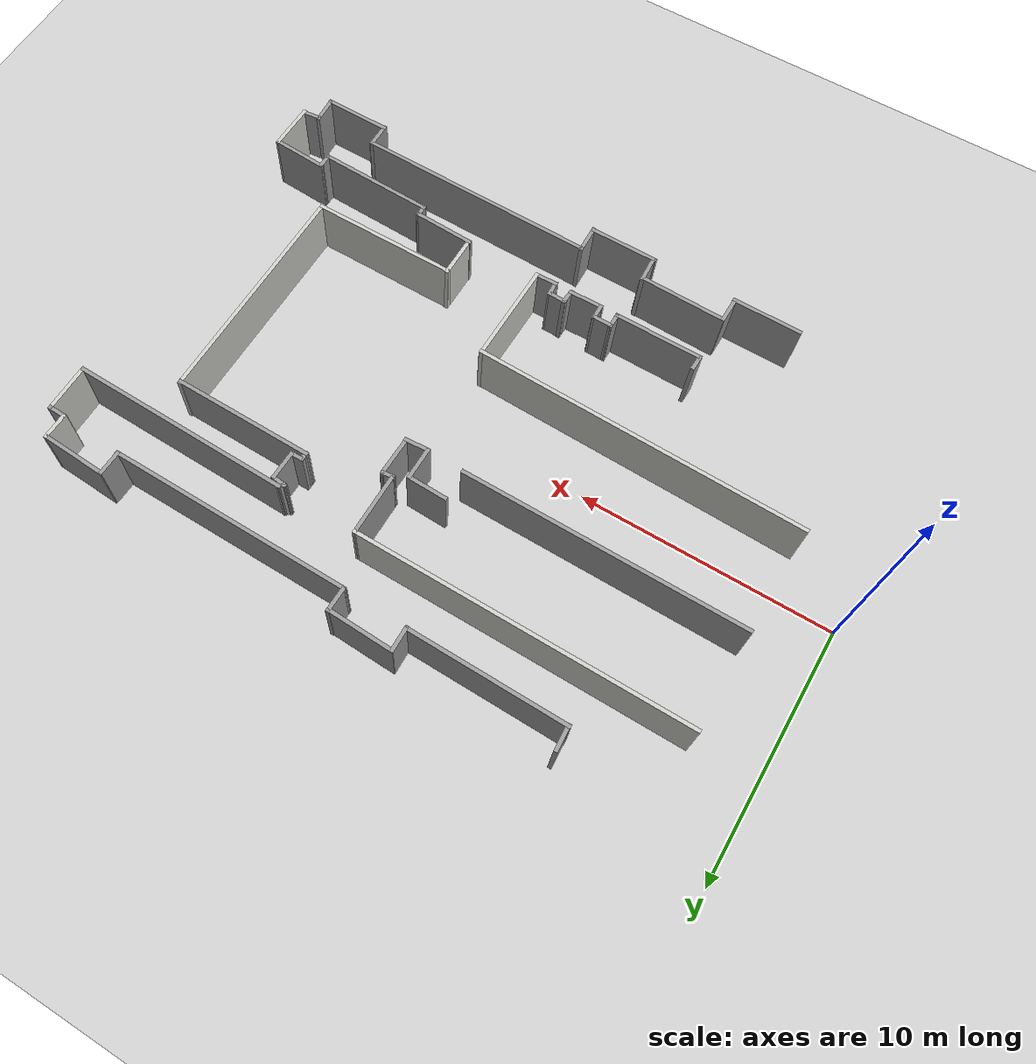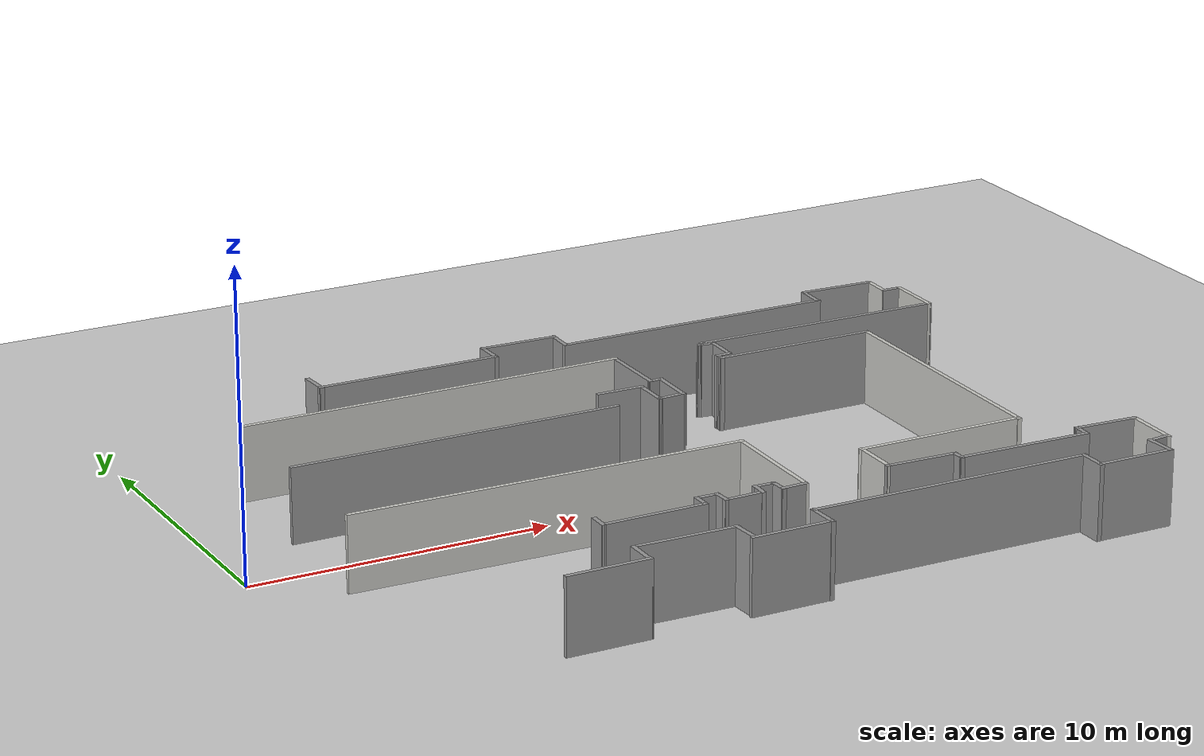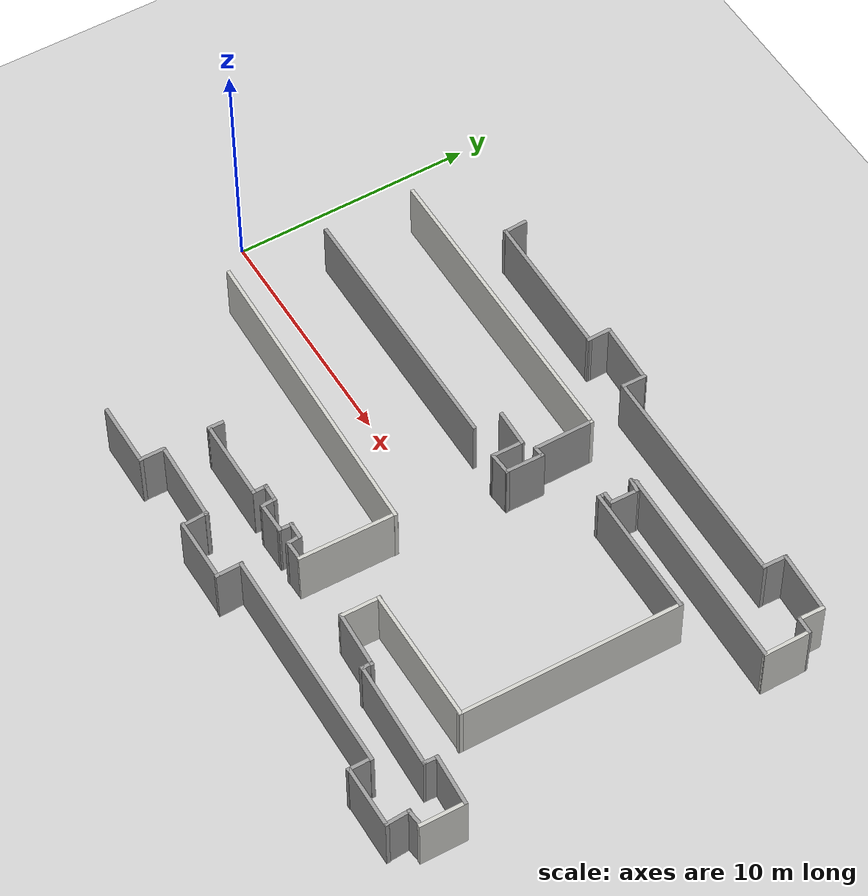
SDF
<sdf version="1.6">
 <world name="default">
  <model name="ground_plane">
   <static>1</static>
   <link name="link">
    <collision name="collision">
     <geometry><plane><normal>0 0 1</normal><size>100 100</size></plane></geometry>
     <surface><friction><ode><mu>100</mu><mu2>50</mu2></ode></friction></surface>
    </collision>
    <visual name="visual">
     <cast_shadows>0</cast_shadows>
     <geometry><plane><normal>0 0 1</normal><size>100 100</size></plane></geometry>
     <material>
      <script><uri>file://media/materials/scripts/gazebo.material</uri><name>Gazebo/Grey</name></script>
     </material>
    </visual>
   </link>
  </model>
  <model name="D1">
   <pose>0 0 0 0 0 -0.05</pose>
   <link name="Wall_124">
    <collision name="Wall_124_Collision">
     <geometry><box><size>0.673913 0.15 2.5</size></box></geometry>
     <pose>0 0 1.25 0 -0 0</pose>
    </collision>
    <visual name="Wall_124_Visual">
     <pose>0 0 1.25 0 -0 0</pose>
     <geometry><box><size>0.673913 0.15 2.5</size></box></geometry>
     <material>
      <script><uri>file://media/materials/scripts/gazebo.material</uri><name>Gazebo/Grey</name></script>
      <ambient>1 1 1 1</ambient>
     </material>
     <meta><layer>0</layer></meta>
    </visual>
    <pose>8.9639 -5.3444 0 0 0 -1.5429</pose>
   </link>
   <link name="Wall_125">
    <collision name="Wall_125_Collision">
     <geometry><box><size>3.54447 0.15 2.5</size></box></geometry>
     <pose>0 0 1.25 0 -0 0</pose>
    </collision>
    <visual name="Wall_125_Visual">
     <pose>0 0 1.25 0 -0 0</pose>
     <geometry><box><size>3.54447 0.15 2.5</size></box></geometry>
     <material>
      <script><uri>file://media/materials/scripts/gazebo.material</uri><name>Gazebo/Grey</name></script>
      <ambient>1 1 1 1</ambient>
     </material>
     <meta><layer>0</layer></meta>
    </visual>
    <pose>10.6782 -5.52934 0 0 -0 0.045331</pose>
   </link>
   <link name="Wall_126">
    <collision name="Wall_126_Collision">
     <geometry><box><size>0.650676 0.15 2.5</size></box></geometry>
     <pose>0 0 1.25 0 -0 0</pose>
    </collision>
    <visual name="Wall_126_Visual">
     <pose>0 0 1.25 0 -0 0</pose>
     <geometry><box><size>0.650676 0.15 2.5</size></box></geometry>
     <material>
      <script><uri>file://media/materials/scripts/gazebo.material</uri><name>Gazebo/Grey</name></script>
      <ambient>1 1 1 1</ambient>
     </material>
     <meta><layer>0</layer></meta>
    </visual>
    <pose>12.3627 -5.19065 0 0 -0 1.61481</pose>
   </link>
   <link name="Wall_127">
    <collision name="Wall_127_Collision">
     <geometry><box><size>0.829635 0.15 2.5</size></box></geometry>
     <pose>0 0 1.25 0 -0 0</pose>
    </collision>
    <visual name="Wall_127_Visual">
     <pose>0 0 1.25 0 -0 0</pose>
     <geometry><box><size>0.829635 0.15 2.5</size></box></geometry>
     <material>
      <script><uri>file://media/materials/scripts/gazebo.material</uri><name>Gazebo/Grey</name></script>
      <ambient>1 1 1 1</ambient>
     </material>
     <meta><layer>0</layer></meta>
    </visual>
    <pose>12.7028 -4.9315 0 0 -0 0.026084</pose>
   </link>
   <link name="Wall_128">
    <collision name="Wall_128_Collision">
     <geometry><box><size>0.662976 0.15 2.5</size></box></geometry>
     <pose>0 0 1.25 0 -0 0</pose>
    </collision>
    <visual name="Wall_128_Visual">
     <pose>0 0 1.25 0 -0 0</pose>
     <geometry><box><size>0.662976 0.15 2.5</size></box></geometry>
     <material>
      <script><uri>file://media/materials/scripts/gazebo.material</uri><name>Gazebo/Grey</name></script>
      <ambient>1 1 1 1</ambient>
     </material>
     <meta><layer>0</layer></meta>
    </visual>
    <pose>13.0551 -5.178 0 0 0 -1.47677</pose>
   </link>
   <link name="Wall_129">
    <collision name="Wall_129_Collision">
     <geometry><box><size>1.41196 0.15 2.5</size></box></geometry>
     <pose>0 0 1.25 0 -0 0</pose>
    </collision>
    <visual name="Wall_129_Visual">
     <pose>0 0 1.25 0 -0 0</pose>
     <geometry><box><size>1.41196 0.15 2.5</size></box></geometry>
     <material>
      <script><uri>file://media/materials/scripts/gazebo.material</uri><name>Gazebo/Grey</name></script>
      <ambient>1 1 1 1</ambient>
     </material>
     <meta><layer>0</layer></meta>
    </visual>
    <pose>13.6977 -5.39163 0 0 -0 0.06613</pose>
   </link>
   <link name="Wall_130">
    <collision name="Wall_130_Collision">
     <geometry><box><size>0.650966 0.15 2.5</size></box></geometry>
     <pose>0 0 1.25 0 -0 0</pose>
    </collision>
    <visual name="Wall_130_Visual">
     <pose>0 0 1.25 0 -0 0</pose>
     <geometry><box><size>0.650966 0.15 2.5</size></box></geometry>
     <material>
      <script><uri>file://media/materials/scripts/gazebo.material</uri><name>Gazebo/Grey</name></script>
      <ambient>1 1 1 1</ambient>
     </material>
     <meta><layer>0</layer></meta>
    </visual>
    <pose>14.3289 -5.11093 0 0 -0 1.56561</pose>
   </link>
   <link name="Wall_131">
    <collision name="Wall_131_Collision">
     <geometry><box><size>0.765829 0.15 2.5</size></box></geometry>
     <pose>0 0 1.25 0 -0 0</pose>
    </collision>
    <visual name="Wall_131_Visual">
     <pose>0 0 1.25 0 -0 0</pose>
     <geometry><box><size>0.765829 0.15 2.5</size></box></geometry>
     <material>
      <script><uri>file://media/materials/scripts/gazebo.material</uri><name>Gazebo/Grey</name></script>
      <ambient>1 1 1 1</ambient>
     </material>
     <meta><layer>0</layer></meta>
    </visual>
    <pose>14.6265 -4.86512 0 0 -0 0.022185</pose>
   </link>
   <link name="Wall_132">
    <collision name="Wall_132_Collision">
     <geometry><box><size>0.650914 0.15 2.5</size></box></geometry>
     <pose>0 0 1.25 0 -0 0</pose>
    </collision>
    <visual name="Wall_132_Visual">
     <pose>0 0 1.25 0 -0 0</pose>
     <geometry><box><size>0.650914 0.15 2.5</size></box></geometry>
     <material>
      <script><uri>file://media/materials/scripts/gazebo.material</uri><name>Gazebo/Grey</name></script>
      <ambient>1 1 1 1</ambient>
     </material>
     <meta><layer>0</layer></meta>
    </visual>
    <pose>14.9748 -5.10708 0 0 0 -1.45518</pose>
   </link>
   <link name="Wall_133">
    <collision name="Wall_133_Collision">
     <geometry><box><size>0.92994 0.15 2.5</size></box></geometry>
     <pose>0 0 1.25 0 -0 0</pose>
    </collision>
    <visual name="Wall_133_Visual">
     <pose>0 0 1.25 0 -0 0</pose>
     <geometry><box><size>0.92994 0.15 2.5</size></box></geometry>
     <material>
      <script><uri>file://media/materials/scripts/gazebo.material</uri><name>Gazebo/Grey</name></script>
      <ambient>1 1 1 1</ambient>
     </material>
     <meta><layer>0</layer></meta>
    </visual>
    <pose>15.3926 -5.31609 0 0 -0 0.072567</pose>
   </link>
   <link name="Wall_134">
    <collision name="Wall_134_Collision">
     <geometry><box><size>4.10517 0.15 2.5</size></box></geometry>
     <pose>0 0 1.25 0 -0 0</pose>
    </collision>
    <visual name="Wall_134_Visual">
     <pose>0 0 1.25 0 -0 0</pose>
     <geometry><box><size>4.10517 0.15 2.5</size></box></geometry>
     <material>
      <script><uri>file://media/materials/scripts/gazebo.material</uri><name>Gazebo/CeilingTiled</name></script>
      <ambient>1 1 1 1</ambient>
     </material>
     <meta><layer>0</layer></meta>
    </visual>
    <pose>15.7356 -3.31106 0 0 -0 1.59988</pose>
   </link>
   <link name="Wall_153">
    <collision name="Wall_153_Collision">
     <geometry><box><size>11.2326 0.15 2.5</size></box></geometry>
     <pose>0 0 1.25 0 -0 0</pose>
    </collision>
    <visual name="Wall_153_Visual">
     <pose>0 0 1.25 0 -0 0</pose>
     <geometry><box><size>11.2326 0.15 2.5</size></box></geometry>
     <material>
      <script><uri>file://media/materials/scripts/gazebo.material</uri><name>Gazebo/Grey</name></script>
      <ambient>1 1 1 1</ambient>
     </material>
     <meta><layer>0</layer></meta>
    </visual>
    <pose>8.01447 2.79533 0 0 -0 0.047362</pose>
   </link>
   <link name="Wall_155">
    <collision name="Wall_155_Collision">
     <geometry><box><size>1.64547 0.15 2.5</size></box></geometry>
     <pose>0 0 1.25 0 -0 0</pose>
    </collision>
    <visual name="Wall_155_Visual">
     <pose>0 0 1.25 0 -0 0</pose>
     <geometry><box><size>1.64547 0.15 2.5</size></box></geometry>
     <material>
      <script><uri>file://media/materials/scripts/gazebo.material</uri><name>Gazebo/Grey</name></script>
      <ambient>1 1 1 1</ambient>
     </material>
     <meta><layer>0</layer></meta>
    </visual>
    <pose>14.2521 4.27517 0 0 -0 0.023393</pose>
   </link>
   <link name="Wall_156">
    <collision name="Wall_156_Collision">
     <geometry><box><size>1.37067 0.15 2.5</size></box></geometry>
     <pose>0 0 1.25 0 -0 0</pose>
    </collision>
    <visual name="Wall_156_Visual">
     <pose>0 0 1.25 0 -0 0</pose>
     <geometry><box><size>1.37067 0.15 2.5</size></box></geometry>
     <material>
      <script><uri>file://media/materials/scripts/gazebo.material</uri><name>Gazebo/Grey</name></script>
      <ambient>1 1 1 1</ambient>
     </material>
     <meta><layer>0</layer></meta>
    </visual>
    <pose>15.0221 3.67274 0 0 0 -1.53397</pose>
   </link>
   <link name="Wall_157">
    <collision name="Wall_157_Collision">
     <geometry><box><size>1.01553 0.15 2.5</size></box></geometry>
     <pose>0 0 1.25 0 -0 0</pose>
    </collision>
    <visual name="Wall_157_Visual">
     <pose>0 0 1.25 0 -0 0</pose>
     <geometry><box><size>1.01553 0.15 2.5</size></box></geometry>
     <material>
      <script><uri>file://media/materials/scripts/gazebo.material</uri><name>Gazebo/Grey</name></script>
      <ambient>1 1 1 1</ambient>
     </material>
     <meta><layer>0</layer></meta>
    </visual>
    <pose>15.4918 3.11423 0 0 -0 0.119078</pose>
   </link>
   <link name="Wall_158">
    <collision name="Wall_158_Collision">
     <geometry><box><size>1.65319 0.15 2.5</size></box></geometry>
     <pose>0 0 1.25 0 -0 0</pose>
    </collision>
    <visual name="Wall_158_Visual">
     <pose>0 0 1.25 0 -0 0</pose>
     <geometry><box><size>1.65319 0.15 2.5</size></box></geometry>
     <material>
      <script><uri>file://media/materials/scripts/gazebo.material</uri><name>Gazebo/Grey</name></script>
      <ambient>1 1 1 1</ambient>
     </material>
     <meta><layer>0</layer></meta>
    </visual>
    <pose>15.8865 3.91678 0 0 -0 1.59408</pose>
   </link>
   <link name="Wall_159">
    <collision name="Wall_159_Collision">
     <geometry><box><size>0.524411 0.15 2.5</size></box></geometry>
     <pose>0 0 1.25 0 -0 0</pose>
    </collision>
    <visual name="Wall_159_Visual">
     <pose>0 0 1.25 0 -0 0</pose>
     <geometry><box><size>0.524411 0.15 2.5</size></box></geometry>
     <material>
      <script><uri>file://media/materials/scripts/gazebo.material</uri><name>Gazebo/Grey</name></script>
      <ambient>1 1 1 1</ambient>
     </material>
     <meta><layer>0</layer></meta>
    </visual>
    <pose>15.6666 4.63913 0 0 0 -2.98725</pose>
   </link>
   <link name="Wall_160">
    <collision name="Wall_160_Collision">
     <geometry><box><size>2.54395 0.15 2.5</size></box></geometry>
     <pose>0 0 1.25 0 -0 0</pose>
    </collision>
    <visual name="Wall_160_Visual">
     <pose>0 0 1.25 0 -0 0</pose>
     <geometry><box><size>2.54395 0.15 2.5</size></box></geometry>
     <material>
      <script><uri>file://media/materials/scripts/gazebo.material</uri><name>Gazebo/Grey</name></script>
      <ambient>1 1 1 1</ambient>
     </material>
     <meta><layer>0</layer></meta>
    </visual>
    <pose>15.4261 5.82354 0 0 -0 1.61713</pose>
   </link>
   <link name="Wall_163">
    <collision name="Wall_163_Collision">
     <geometry><box><size>13.2481 0.15 2.5</size></box></geometry>
     <pose>0 0 1.25 0 -0 0</pose>
    </collision>
    <visual name="Wall_163_Visual">
     <pose>0 0 1.25 0 -0 0</pose>
     <geometry><box><size>13.2481 0.15 2.5</size></box></geometry>
     <material>
      <script><uri>file://media/materials/scripts/gazebo.material</uri><name>Gazebo/CeilingTiled</name></script>
      <ambient>1 1 1 1</ambient>
     </material>
     <meta><layer>0</layer></meta>
    </visual>
    <pose>8.82885 6.71242 0 0 -0 0.046865</pose>
   </link>
   <link name="Wall_180">
    <collision name="Wall_180_Collision">
     <geometry><box><size>13.2442 0.15 2.5</size></box></geometry>
     <pose>0 0 1.25 0 -0 0</pose>
    </collision>
    <visual name="Wall_180_Visual">
     <pose>0 0 1.25 0 -0 0</pose>
     <geometry><box><size>13.2442 0.15 2.5</size></box></geometry>
     <material>
      <script><uri>file://media/materials/scripts/gazebo.material</uri><name>Gazebo/CeilingTiled</name></script>
      <ambient>1 1 1 1</ambient>
     </material>
     <meta><layer>0</layer></meta>
    </visual>
    <pose>9.145 -1.52756 0 0 -0 0.027763</pose>
   </link>
   <link name="Wall_38">
    <collision name="Wall_38_Collision">
     <geometry><box><size>1.0429 0.15 2.5</size></box></geometry>
     <pose>0 0 1.25 0 -0 0</pose>
    </collision>
    <visual name="Wall_38_Visual">
     <pose>0 0 1.25 0 -0 0</pose>
     <geometry><box><size>1.0429 0.15 2.5</size></box></geometry>
     <material>
      <script><uri>file://media/materials/scripts/gazebo.material</uri><name>Gazebo/Grey</name></script>
      <ambient>1 1 1 1</ambient>
     </material>
     <meta><layer>0</layer></meta>
    </visual>
    <pose>5.76091 9.04469 0 0 0 -1.469</pose>
   </link>
   <link name="Wall_39">
    <collision name="Wall_39_Collision">
     <geometry><box><size>6.3227 0.15 2.5</size></box></geometry>
     <pose>0 0 1.25 0 -0 0</pose>
    </collision>
    <visual name="Wall_39_Visual">
     <pose>0 0 1.25 0 -0 0</pose>
     <geometry><box><size>6.3227 0.15 2.5</size></box></geometry>
     <material>
      <script><uri>file://media/materials/scripts/gazebo.material</uri><name>Gazebo/Grey</name></script>
      <ambient>1 1 1 1</ambient>
     </material>
     <meta><layer>0</layer></meta>
    </visual>
    <pose>8.87542 8.73666 0 0 -0 0.039206</pose>
   </link>
   <link name="Wall_40">
    <collision name="Wall_40_Collision">
     <geometry><box><size>1.04803 0.15 2.5</size></box></geometry>
     <pose>0 0 1.25 0 -0 0</pose>
    </collision>
    <visual name="Wall_40_Visual">
     <pose>0 0 1.25 0 -0 0</pose>
     <geometry><box><size>1.04803 0.15 2.5</size></box></geometry>
     <material>
      <script><uri>file://media/materials/scripts/gazebo.material</uri><name>Gazebo/Grey</name></script>
      <ambient>1 1 1 1</ambient>
     </material>
     <meta><layer>0</layer></meta>
    </visual>
    <pose>11.9308 9.2906 0 0 -0 1.63527</pose>
   </link>
   <link name="Wall_41">
    <collision name="Wall_41_Collision">
     <geometry><box><size>2.69114 0.15 2.5</size></box></geometry>
     <pose>0 0 1.25 0 -0 0</pose>
    </collision>
    <visual name="Wall_41_Visual">
     <pose>0 0 1.25 0 -0 0</pose>
     <geometry><box><size>2.69114 0.15 2.5</size></box></geometry>
     <material>
      <script><uri>file://media/materials/scripts/gazebo.material</uri><name>Gazebo/Grey</name></script>
      <ambient>1 1 1 1</ambient>
     </material>
     <meta><layer>0</layer></meta>
    </visual>
    <pose>13.1872 9.77192 0 0 -0 0.01426</pose>
   </link>
   <link name="Wall_42">
    <collision name="Wall_42_Collision">
     <geometry><box><size>1.04374 0.15 2.5</size></box></geometry>
     <pose>0 0 1.25 0 -0 0</pose>
    </collision>
    <visual name="Wall_42_Visual">
     <pose>0 0 1.25 0 -0 0</pose>
     <geometry><box><size>1.04374 0.15 2.5</size></box></geometry>
     <material>
      <script><uri>file://media/materials/scripts/gazebo.material</uri><name>Gazebo/Grey</name></script>
      <ambient>1 1 1 1</ambient>
     </material>
     <meta><layer>0</layer></meta>
    </visual>
    <pose>14.4683 9.3663 0 0 0 -1.54647</pose>
   </link>
   <link name="Wall_43">
    <collision name="Wall_43_Collision">
     <geometry><box><size>9.69769 0.15 2.5</size></box></geometry>
     <pose>0 0 1.25 0 -0 0</pose>
    </collision>
    <visual name="Wall_43_Visual">
     <pose>0 0 1.25 0 -0 0</pose>
     <geometry><box><size>9.69769 0.15 2.5</size></box></geometry>
     <material>
      <script><uri>file://media/materials/scripts/gazebo.material</uri><name>Gazebo/Grey</name></script>
      <ambient>1 1 1 1</ambient>
     </material>
     <meta><layer>0</layer></meta>
    </visual>
    <pose>19.2494 9.09379 0 0 -0 0.041322</pose>
   </link>
   <link name="Wall_44">
    <collision name="Wall_44_Collision">
     <geometry><box><size>1.02709 0.15 2.5</size></box></geometry>
     <pose>0 0 1.25 0 -0 0</pose>
    </collision>
    <visual name="Wall_44_Visual">
     <pose>0 0 1.25 0 -0 0</pose>
     <geometry><box><size>1.02709 0.15 2.5</size></box></geometry>
     <material>
      <script><uri>file://media/materials/scripts/gazebo.material</uri><name>Gazebo/Grey</name></script>
      <ambient>1 1 1 1</ambient>
     </material>
     <meta><layer>0</layer></meta>
    </visual>
    <pose>23.9936 9.75255 0 0 -0 1.57753</pose>
   </link>
   <link name="Wall_45">
    <collision name="Wall_45_Collision">
     <geometry><box><size>2.635 0.15 2.5</size></box></geometry>
     <pose>0 0 1.25 0 -0 0</pose>
    </collision>
    <visual name="Wall_45_Visual">
     <pose>0 0 1.25 0 -0 0</pose>
     <geometry><box><size>2.635 0.15 2.5</size></box></geometry>
     <material>
      <script><uri>file://media/materials/scripts/gazebo.material</uri><name>Gazebo/Grey</name></script>
      <ambient>1 1 1 1</ambient>
     </material>
     <meta><layer>0</layer></meta>
    </visual>
    <pose>25.2562 10.2141 0 0 -0 0</pose>
   </link>
   <link name="Wall_46">
    <collision name="Wall_46_Collision">
     <geometry><box><size>1.09732 0.15 2.5</size></box></geometry>
     <pose>0 0 1.25 0 -0 0</pose>
    </collision>
    <visual name="Wall_46_Visual">
     <pose>0 0 1.25 0 -0 0</pose>
     <geometry><box><size>1.09732 0.15 2.5</size></box></geometry>
     <material>
      <script><uri>file://media/materials/scripts/gazebo.material</uri><name>Gazebo/CeilingTiled</name></script>
      <ambient>1 1 1 1</ambient>
     </material>
     <meta><layer>0</layer></meta>
    </visual>
    <pose>26.5293 9.74081 0 0 0 -1.55462</pose>
   </link>
   <link name="Wall_47">
    <collision name="Wall_47_Collision">
     <geometry><box><size>0.755397 0.15 2.5</size></box></geometry>
     <pose>0 0 1.25 0 -0 0</pose>
    </collision>
    <visual name="Wall_47_Visual">
     <pose>0 0 1.25 0 -0 0</pose>
     <geometry><box><size>0.755397 0.15 2.5</size></box></geometry>
     <material>
      <script><uri>file://media/materials/scripts/gazebo.material</uri><name>Gazebo/Grey</name></script>
      <ambient>1 1 1 1</ambient>
     </material>
     <meta><layer>0</layer></meta>
    </visual>
    <pose>26.8626 9.25115 0 0 -0 0.02184</pose>
   </link>
   <link name="Wall_48">
    <collision name="Wall_48_Collision">
     <geometry><box><size>1.99513 0.15 2.5</size></box></geometry>
     <pose>0 0 1.25 0 -0 0</pose>
    </collision>
    <visual name="Wall_48_Visual">
     <pose>0 0 1.25 0 -0 0</pose>
     <geometry><box><size>1.99513 0.15 2.5</size></box></geometry>
     <material>
      <script><uri>file://media/materials/scripts/gazebo.material</uri><name>Gazebo/CeilingTiled</name></script>
      <ambient>1 1 1 1</ambient>
     </material>
     <meta><layer>0</layer></meta>
    </visual>
    <pose>27.2048 8.32574 0 0 0 -1.52796</pose>
   </link>
   <link name="Wall_49">
    <collision name="Wall_49_Collision">
     <geometry><box><size>8.81905 0.15 2.5</size></box></geometry>
     <pose>0 0 1.25 0 -0 0</pose>
    </collision>
    <visual name="Wall_49_Visual">
     <pose>0 0 1.25 0 -0 0</pose>
     <geometry><box><size>8.81905 0.15 2.5</size></box></geometry>
     <material>
      <script><uri>file://media/materials/scripts/gazebo.material</uri><name>Gazebo/Grey</name></script>
      <ambient>1 1 1 1</ambient>
     </material>
     <meta><layer>0</layer></meta>
    </visual>
    <pose>22.8921 7.26457 0 0 0 -3.1095</pose>
   </link>
   <link name="Wall_51">
    <collision name="Wall_51_Collision">
     <geometry><box><size>0.35063 0.15 2.5</size></box></geometry>
     <pose>0 0 1.25 0 -0 0</pose>
    </collision>
    <visual name="Wall_51_Visual">
     <pose>0 0 1.25 0 -0 0</pose>
     <geometry><box><size>0.35063 0.15 2.5</size></box></geometry>
     <material>
      <script><uri>file://media/materials/scripts/gazebo.material</uri><name>Gazebo/Grey</name></script>
      <ambient>1 1 1 1</ambient>
     </material>
     <meta><layer>0</layer></meta>
    </visual>
    <pose>18.5048 7.05881 0 0 0 -2.41466</pose>
   </link>
   <link name="Wall_53">
    <collision name="Wall_53_Collision">
     <geometry><box><size>0.641296 0.15 2.5</size></box></geometry>
     <pose>0 0 1.25 0 -0 0</pose>
    </collision>
    <visual name="Wall_53_Visual">
     <pose>0 0 1.25 0 -0 0</pose>
     <geometry><box><size>0.641296 0.15 2.5</size></box></geometry>
     <material>
      <script><uri>file://media/materials/scripts/gazebo.material</uri><name>Gazebo/Grey</name></script>
      <ambient>1 1 1 1</ambient>
     </material>
     <meta><layer>0</layer></meta>
    </visual>
    <pose>18.6631 6.97141 0 0 -0 3.05709</pose>
   </link>
   <link name="Wall_55">
    <collision name="Wall_55_Collision">
     <geometry><box><size>1.21594 0.15 2.5</size></box></geometry>
     <pose>0 0 1.25 0 -0 0</pose>
    </collision>
    <visual name="Wall_55_Visual">
     <pose>0 0 1.25 0 -0 0</pose>
     <geometry><box><size>1.21594 0.15 2.5</size></box></geometry>
     <material>
      <script><uri>file://media/materials/scripts/gazebo.material</uri><name>Gazebo/Grey</name></script>
      <ambient>1 1 1 1</ambient>
     </material>
     <meta><layer>0</layer></meta>
    </visual>
    <pose>18.9193 6.4064 0 0 -0 1.59225</pose>
   </link>
   <link name="Wall_57">
    <collision name="Wall_57_Collision">
     <geometry><box><size>0.569235 0.15 2.5</size></box></geometry>
     <pose>0 0 1.25 0 -0 0</pose>
    </collision>
    <visual name="Wall_57_Visual">
     <pose>0 0 1.25 0 -0 0</pose>
     <geometry><box><size>0.569235 0.15 2.5</size></box></geometry>
     <material>
      <script><uri>file://media/materials/scripts/gazebo.material</uri><name>Gazebo/Grey</name></script>
      <ambient>1 1 1 1</ambient>
     </material>
     <meta><layer>0</layer></meta>
    </visual>
    <pose>18.71 5.85068 0 0 0 -3.08701</pose>
   </link>
   <link name="Wall_58">
    <collision name="Wall_58_Collision">
     <geometry><box><size>0.400467 0.15 2.5</size></box></geometry>
     <pose>0 0 1.25 0 -0 0</pose>
    </collision>
    <visual name="Wall_58_Visual">
     <pose>0 0 1.25 0 -0 0</pose>
     <geometry><box><size>0.400467 0.15 2.5</size></box></geometry>
     <material>
      <script><uri>file://media/materials/scripts/gazebo.material</uri><name>Gazebo/Grey</name></script>
      <ambient>1 1 1 1</ambient>
     </material>
     <meta><layer>0</layer></meta>
    </visual>
    <pose>18.5131 5.70258 0 0 0 -1.56302</pose>
   </link>
   <link name="Wall_59">
    <collision name="Wall_59_Collision">
     <geometry><box><size>5.63002 0.15 2.5</size></box></geometry>
     <pose>0 0 1.25 0 -0 0</pose>
    </collision>
    <visual name="Wall_59_Visual">
     <pose>0 0 1.25 0 -0 0</pose>
     <geometry><box><size>5.63002 0.15 2.5</size></box></geometry>
     <material>
      <script><uri>file://media/materials/scripts/gazebo.material</uri><name>Gazebo/Grey</name></script>
      <ambient>1 1 1 1</ambient>
     </material>
     <meta><layer>0</layer></meta>
    </visual>
    <pose>21.2513 5.70073 0 0 -0 0.040873</pose>
   </link>
   <link name="Wall_62">
    <collision name="Wall_62_Collision">
     <geometry><box><size>9.30827 0.15 2.5</size></box></geometry>
     <pose>0 0 1.25 0 -0 0</pose>
    </collision>
    <visual name="Wall_62_Visual">
     <pose>0 0 1.25 0 -0 0</pose>
     <geometry><box><size>9.30827 0.15 2.5</size></box></geometry>
     <material>
      <script><uri>file://media/materials/scripts/gazebo.material</uri><name>Gazebo/CeilingTiled</name></script>
      <ambient>1 1 1 1</ambient>
     </material>
     <meta><layer>0</layer></meta>
    </visual>
    <pose>24.1624 1.27181 0 0 0 -1.53282</pose>
   </link>
   <link name="Wall_64">
    <collision name="Wall_64_Collision">
     <geometry><box><size>5.82321 0.15 2.5</size></box></geometry>
     <pose>0 0 1.25 0 -0 0</pose>
    </collision>
    <visual name="Wall_64_Visual">
     <pose>0 0 1.25 0 -0 0</pose>
     <geometry><box><size>5.82321 0.15 2.5</size></box></geometry>
     <material>
      <script><uri>file://media/materials/scripts/gazebo.material</uri><name>Gazebo/CeilingTiled</name></script>
      <ambient>1 1 1 1</ambient>
     </material>
     <meta><layer>0</layer></meta>
    </visual>
    <pose>21.5031 -3.40937 0 0 0 -3.0921</pose>
   </link>
   <link name="Wall_65">
    <collision name="Wall_65_Collision">
     <geometry><box><size>1.71552 0.15 2.5</size></box></geometry>
     <pose>0 0 1.25 0 -0 0</pose>
    </collision>
    <visual name="Wall_65_Visual">
     <pose>0 0 1.25 0 -0 0</pose>
     <geometry><box><size>1.71552 0.15 2.5</size></box></geometry>
     <material>
      <script><uri>file://media/materials/scripts/gazebo.material</uri><name>Gazebo/CeilingTiled</name></script>
      <ambient>1 1 1 1</ambient>
     </material>
     <meta><layer>0</layer></meta>
    </visual>
    <pose>18.7006 -4.30887 0 0 0 -1.53171</pose>
   </link>
   <link name="Wall_66">
    <collision name="Wall_66_Collision">
     <geometry><box><size>2.49506 0.15 2.5</size></box></geometry>
     <pose>0 0 1.25 0 -0 0</pose>
    </collision>
    <visual name="Wall_66_Visual">
     <pose>0 0 1.25 0 -0 0</pose>
     <geometry><box><size>2.49506 0.15 2.5</size></box></geometry>
     <material>
      <script><uri>file://media/materials/scripts/gazebo.material</uri><name>Gazebo/Grey</name></script>
      <ambient>1 1 1 1</ambient>
     </material>
     <meta><layer>0</layer></meta>
    </visual>
    <pose>19.8807 -5.07976 0 0 -0 0.009612</pose>
   </link>
   <link name="Wall_67">
    <collision name="Wall_67_Collision">
     <geometry><box><size>0.536082 0.15 2.5</size></box></geometry>
     <pose>0 0 1.25 0 -0 0</pose>
    </collision>
    <visual name="Wall_67_Visual">
     <pose>0 0 1.25 0 -0 0</pose>
     <geometry><box><size>0.536082 0.15 2.5</size></box></geometry>
     <material>
      <script><uri>file://media/materials/scripts/gazebo.material</uri><name>Gazebo/Grey</name></script>
      <ambient>1 1 1 1</ambient>
     </material>
     <meta><layer>0</layer></meta>
    </visual>
    <pose>21.0415 -5.2612 0 0 0 -1.51178</pose>
   </link>
   <link name="Wall_68">
    <collision name="Wall_68_Collision">
     <geometry><box><size>4.63668 0.15 2.5</size></box></geometry>
     <pose>0 0 1.25 0 -0 0</pose>
    </collision>
    <visual name="Wall_68_Visual">
     <pose>0 0 1.25 0 -0 0</pose>
     <geometry><box><size>4.63668 0.15 2.5</size></box></geometry>
     <material>
      <script><uri>file://media/materials/scripts/gazebo.material</uri><name>Gazebo/Grey</name></script>
      <ambient>1 1 1 1</ambient>
     </material>
     <meta><layer>0</layer></meta>
    </visual>
    <pose>23.2955 -5.38536 0 0 -0 0.020304</pose>
   </link>
   <link name="Wall_69">
    <collision name="Wall_69_Collision">
     <geometry><box><size>0.622786 0.15 2.5</size></box></geometry>
     <pose>0 0 1.25 0 -0 0</pose>
    </collision>
    <visual name="Wall_69_Visual">
     <pose>0 0 1.25 0 -0 0</pose>
     <geometry><box><size>0.622786 0.15 2.5</size></box></geometry>
     <material>
      <script><uri>file://media/materials/scripts/gazebo.material</uri><name>Gazebo/Grey</name></script>
      <ambient>1 1 1 1</ambient>
     </material>
     <meta><layer>0</layer></meta>
    </visual>
    <pose>25.5381 -5.08042 0 0 -0 1.5708</pose>
   </link>
   <link name="Wall_70">
    <collision name="Wall_70_Collision">
     <geometry><box><size>2.20929 0.15 2.5</size></box></geometry>
     <pose>0 0 1.25 0 -0 0</pose>
    </collision>
    <visual name="Wall_70_Visual">
     <pose>0 0 1.25 0 -0 0</pose>
     <geometry><box><size>2.20929 0.15 2.5</size></box></geometry>
     <material>
      <script><uri>file://media/materials/scripts/gazebo.material</uri><name>Gazebo/Grey</name></script>
      <ambient>1 1 1 1</ambient>
     </material>
     <meta><layer>0</layer></meta>
    </visual>
    <pose>26.5678 -4.82483 0 0 0 -0.003686</pose>
   </link>
   <link name="Wall_71">
    <collision name="Wall_71_Collision">
     <geometry><box><size>1.93412 0.15 2.5</size></box></geometry>
     <pose>0 0 1.25 0 -0 0</pose>
    </collision>
    <visual name="Wall_71_Visual">
     <pose>0 0 1.25 0 -0 0</pose>
     <geometry><box><size>1.93412 0.15 2.5</size></box></geometry>
     <material>
      <script><uri>file://media/materials/scripts/gazebo.material</uri><name>Gazebo/CeilingTiled</name></script>
      <ambient>1 1 1 1</ambient>
     </material>
     <meta><layer>0</layer></meta>
    </visual>
    <pose>27.6473 -5.72028 0 0 0 -1.54063</pose>
   </link>
   <link name="Wall_72">
    <collision name="Wall_72_Collision">
     <geometry><box><size>0.788672 0.15 2.5</size></box></geometry>
     <pose>0 0 1.25 0 -0 0</pose>
    </collision>
    <visual name="Wall_72_Visual">
     <pose>0 0 1.25 0 -0 0</pose>
     <geometry><box><size>0.788672 0.15 2.5</size></box></geometry>
     <material>
      <script><uri>file://media/materials/scripts/gazebo.material</uri><name>Gazebo/Grey</name></script>
      <ambient>1 1 1 1</ambient>
     </material>
     <meta><layer>0</layer></meta>
    </visual>
    <pose>27.3363 -6.64166 0 0 0 -2.97572</pose>
   </link>
   <link name="Wall_73">
    <collision name="Wall_73_Collision">
     <geometry><box><size>1.08617 0.15 2.5</size></box></geometry>
     <pose>0 0 1.25 0 -0 0</pose>
    </collision>
    <visual name="Wall_73_Visual">
     <pose>0 0 1.25 0 -0 0</pose>
     <geometry><box><size>1.08617 0.15 2.5</size></box></geometry>
     <material>
      <script><uri>file://media/materials/scripts/gazebo.material</uri><name>Gazebo/Grey</name></script>
      <ambient>1 1 1 1</ambient>
     </material>
     <meta><layer>0</layer></meta>
    </visual>
    <pose>27.0443 -7.13721 0 0 0 -1.47236</pose>
   </link>
   <link name="Wall_74">
    <collision name="Wall_74_Collision">
     <geometry><box><size>2.71693 0.15 2.5</size></box></geometry>
     <pose>0 0 1.25 0 -0 0</pose>
    </collision>
    <visual name="Wall_74_Visual">
     <pose>0 0 1.25 0 -0 0</pose>
     <geometry><box><size>2.71693 0.15 2.5</size></box></geometry>
     <material>
      <script><uri>file://media/materials/scripts/gazebo.material</uri><name>Gazebo/Grey</name></script>
      <ambient>1 1 1 1</ambient>
     </material>
     <meta><layer>0</layer></meta>
    </visual>
    <pose>25.8311 -7.68341 0 0 0 -3.09687</pose>
   </link>
   <link name="Wall_75">
    <collision name="Wall_75_Collision">
     <geometry><box><size>1.04694 0.15 2.5</size></box></geometry>
     <pose>0 0 1.25 0 -0 0</pose>
    </collision>
    <visual name="Wall_75_Visual">
     <pose>0 0 1.25 0 -0 0</pose>
     <geometry><box><size>1.04694 0.15 2.5</size></box></geometry>
     <material>
      <script><uri>file://media/materials/scripts/gazebo.material</uri><name>Gazebo/Grey</name></script>
      <ambient>1 1 1 1</ambient>
     </material>
     <meta><layer>0</layer></meta>
    </visual>
    <pose>24.5261 -7.31591 0 0 -0 1.62185</pose>
   </link>
   <link name="Wall_76">
    <collision name="Wall_76_Collision">
     <geometry><box><size>9.64316 0.15 2.5</size></box></geometry>
     <pose>0 0 1.25 0 -0 0</pose>
    </collision>
    <visual name="Wall_76_Visual">
     <pose>0 0 1.25 0 -0 0</pose>
     <geometry><box><size>9.64316 0.15 2.5</size></box></geometry>
     <material>
      <script><uri>file://media/materials/scripts/gazebo.material</uri><name>Gazebo/Grey</name></script>
      <ambient>1 1 1 1</ambient>
     </material>
     <meta><layer>0</layer></meta>
    </visual>
    <pose>19.7835 -7.05916 0 0 0 -3.10132</pose>
   </link>
   <link name="Wall_77">
    <collision name="Wall_77_Collision">
     <geometry><box><size>1.17421 0.15 2.5</size></box></geometry>
     <pose>0 0 1.25 0 -0 0</pose>
    </collision>
    <visual name="Wall_77_Visual">
     <pose>0 0 1.25 0 -0 0</pose>
     <geometry><box><size>1.17421 0.15 2.5</size></box></geometry>
     <material>
      <script><uri>file://media/materials/scripts/gazebo.material</uri><name>Gazebo/Grey</name></script>
      <ambient>1 1 1 1</ambient>
     </material>
     <meta><layer>0</layer></meta>
    </visual>
    <pose>15.0561 -7.73796 0 0 0 -1.49572</pose>
   </link>
   <link name="Wall_78">
    <collision name="Wall_78_Collision">
     <geometry><box><size>2.7613 0.15 2.5</size></box></geometry>
     <pose>0 0 1.25 0 -0 0</pose>
    </collision>
    <visual name="Wall_78_Visual">
     <pose>0 0 1.25 0 -0 0</pose>
     <geometry><box><size>2.7613 0.15 2.5</size></box></geometry>
     <material>
      <script><uri>file://media/materials/scripts/gazebo.material</uri><name>Gazebo/Grey</name></script>
      <ambient>1 1 1 1</ambient>
     </material>
     <meta><layer>0</layer></meta>
    </visual>
    <pose>13.7675 -8.29071 0 0 0 -3.09172</pose>
   </link>
   <link name="Wall_79">
    <collision name="Wall_79_Collision">
     <geometry><box><size>1.10475 0.15 2.5</size></box></geometry>
     <pose>0 0 1.25 0 -0 0</pose>
    </collision>
    <visual name="Wall_79_Visual">
     <pose>0 0 1.25 0 -0 0</pose>
     <geometry><box><size>1.10475 0.15 2.5</size></box></geometry>
     <material>
      <script><uri>file://media/materials/scripts/gazebo.material</uri><name>Gazebo/Grey</name></script>
      <ambient>1 1 1 1</ambient>
     </material>
     <meta><layer>0</layer></meta>
    </visual>
    <pose>12.4599 -7.858 0 0 -0 1.67481</pose>
   </link>
   <link name="Wall_80">
    <collision name="Wall_80_Collision">
     <geometry><box><size>3.51157 0.15 2.5</size></box></geometry>
     <pose>0 0 1.25 0 -0 0</pose>
    </collision>
    <visual name="Wall_80_Visual">
     <pose>0 0 1.25 0 -0 0</pose>
     <geometry><box><size>3.51157 0.15 2.5</size></box></geometry>
     <material>
      <script><uri>file://media/materials/scripts/gazebo.material</uri><name>Gazebo/Grey</name></script>
      <ambient>1 1 1 1</ambient>
     </material>
     <meta><layer>0</layer></meta>
    </visual>
    <pose>10.7532 -7.45198 0 0 0 -3.11436</pose>
   </link>
   <link name="Wall_81">
    <collision name="Wall_81_Collision">
     <geometry><box><size>1.10743 0.15 2.5</size></box></geometry>
     <pose>0 0 1.25 0 -0 0</pose>
    </collision>
    <visual name="Wall_81_Visual">
     <pose>0 0 1.25 0 -0 0</pose>
     <geometry><box><size>1.10743 0.15 2.5</size></box></geometry>
     <material>
      <script><uri>file://media/materials/scripts/gazebo.material</uri><name>Gazebo/Grey</name></script>
      <ambient>1 1 1 1</ambient>
     </material>
     <meta><layer>0</layer></meta>
    </visual>
    <pose>9.06523 -7.99923 0 0 0 -1.53908</pose>
   </link>
   <link name="Wall_82">
    <collision name="Wall_82_Collision">
     <geometry><box><size>2.80955 0.15 2.5</size></box></geometry>
     <pose>0 0 1.25 0 -0 0</pose>
    </collision>
    <visual name="Wall_82_Visual">
     <pose>0 0 1.25 0 -0 0</pose>
     <geometry><box><size>2.80955 0.15 2.5</size></box></geometry>
     <material>
      <script><uri>file://media/materials/scripts/gazebo.material</uri><name>Gazebo/Grey</name></script>
      <ambient>1 1 1 1</ambient>
     </material>
     <meta><layer>0</layer></meta>
    </visual>
    <pose>7.77523 -8.54279 0 0 0 -3.09262</pose>
   </link>
   <static>1</static>
  </model>
 </world>
</sdf>
